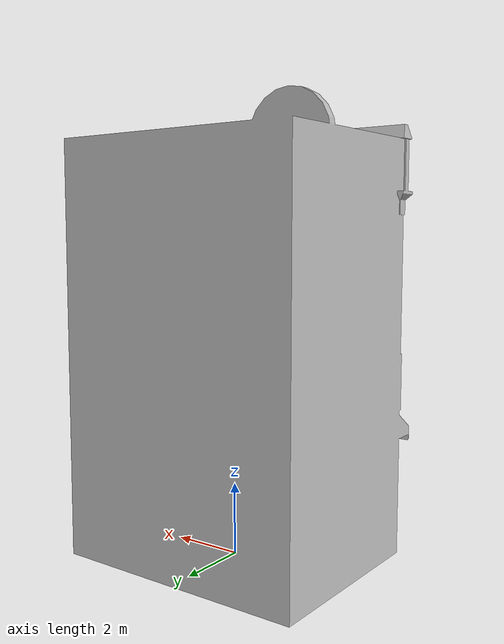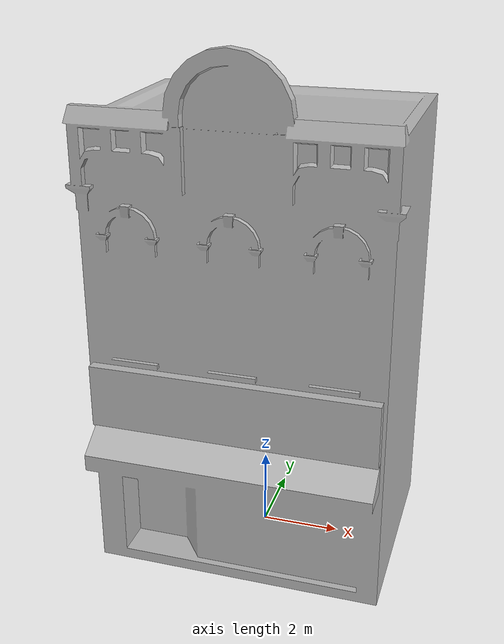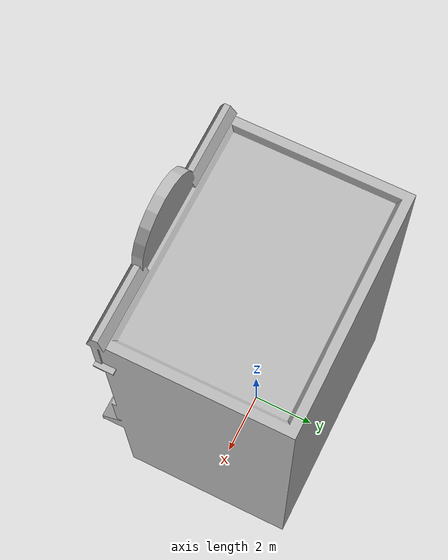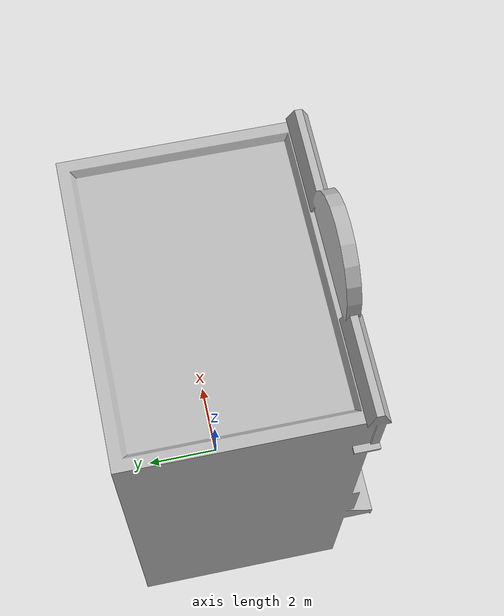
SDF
<?xml version="1.0" ?>
<sdf version="1.6">
  <model name="thrift_shop">
    <static>true</static>
    <link name="link">
      <collision name="collision">
        <pose>0 0 5.694693596 0 0 0</pose>
        <geometry>
          <box>
            <size>7.212969278 5.431646878 11.389387193</size>
          </box>
        </geometry>
      </collision>
      <visual name="visual">
        <pose>0 -0.912490988 0 0 0 0</pose>
        <geometry>
          <mesh>
            <uri>model://thrift_shop/meshes/thrift_shop.dae</uri>
          </mesh>
        </geometry>
      </visual>
    </link>
  </model>
</sdf>
